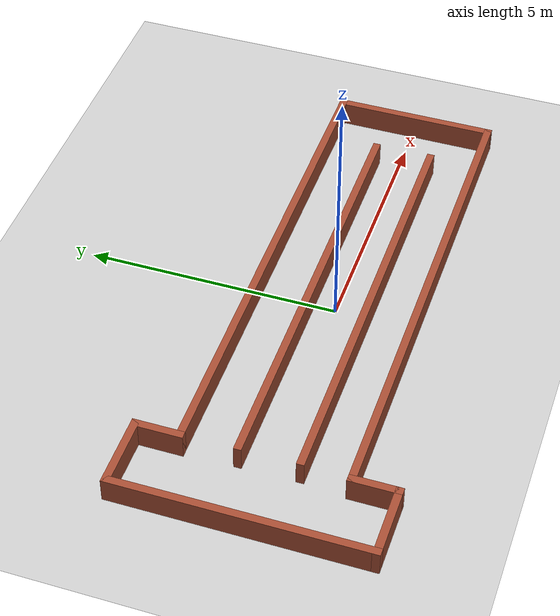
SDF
<sdf version="1.7">
 <world name="default">
  <light name="sun" type="directional">
   <pose>0 0 10 0 -0 0</pose>
   <diffuse>0.8 0.8 0.8 1</diffuse>
   <specular>0.2 0.2 0.2 1</specular>
   <attenuation>
    <range>1000</range>
    <constant>0.9</constant>
    <linear>0.01</linear>
    <quadratic>0.001</quadratic>
   </attenuation>
   <direction>-0.5 0.1 -0.9</direction>
   <spot><inner_angle>0</inner_angle><outer_angle>0</outer_angle><falloff>0</falloff></spot>
  </light>
  <model name="ground_plane">
   <static>1</static>
   <link name="link">
    <collision name="collision">
     <geometry><plane><normal>0 0 1</normal><size>100 100</size></plane></geometry>
     <surface>
      <contact><collide_bitmask>65535</collide_bitmask></contact>
      <friction><ode><mu>100</mu><mu2>50</mu2></ode></friction>
     </surface>
    </collision>
    <visual name="visual">
     <cast_shadows>0</cast_shadows>
     <geometry><plane><normal>0 0 1</normal><size>100 100</size></plane></geometry>
     <material>
      <script><uri>file://media/materials/scripts/gazebo.material</uri><name>Gazebo/Grey</name></script>
     </material>
    </visual>
   </link>
  </model>
  <gravity>0 0 -9.8</gravity>
  <magnetic_field>6e-06 2.3e-05 -4.2e-05</magnetic_field>
  <atmosphere type="adiabatic"/>
  <physics type="ode">
   <max_step_size>0.001</max_step_size>
   <real_time_factor>1</real_time_factor>
   <real_time_update_rate>1000</real_time_update_rate>
  </physics>
  <scene><ambient>0.4 0.4 0.4 1</ambient><background>0.7 0.7 0.7 1</background><shadows>1</shadows></scene>
  <spherical_coordinates>
   <surface_model>EARTH_WGS84</surface_model>
   <latitude_deg>0</latitude_deg>
   <longitude_deg>0</longitude_deg>
   <elevation>0</elevation>
   <heading_deg>0</heading_deg>
  </spherical_coordinates>
  <model name="corridor28">
   <pose>0.021452 -0.012203 0 0 -0 0</pose>
   <link name="Wall_0">
    <collision name="Wall_0_Collision">
     <geometry><box><size>5 0.15 0.5</size></box></geometry>
     <pose>0 0 0.25 0 -0 0</pose>
    </collision>
    <visual name="Wall_0_Visual">
     <pose>0 0 0.25 0 -0 0</pose>
     <geometry><box><size>5 0.15 0.5</size></box></geometry>
     <material>
      <script><uri>file://media/materials/scripts/gazebo.material</uri><name>Gazebo/Bricks</name></script>
      <ambient>1 1 1 1</ambient>
     </material>
     <meta><layer>0</layer></meta>
    </visual>
    <pose>-5.6 0 0 0 -0 1.5708</pose>
   </link>
   <link name="Wall_1">
    <collision name="Wall_1_Collision">
     <geometry><box><size>1.5 0.15 0.5</size></box></geometry>
     <pose>0 0 0.25 0 -0 0</pose>
    </collision>
    <visual name="Wall_1_Visual">
     <pose>0 0 0.25 0 -0 0</pose>
     <geometry><box><size>1.5 0.15 0.5</size></box></geometry>
     <material>
      <script><uri>file://media/materials/scripts/gazebo.material</uri><name>Gazebo/Bricks</name></script>
      <ambient>1 1 1 1</ambient>
     </material>
     <meta><layer>0</layer></meta>
    </visual>
    <pose>-4.925 2.425 0 0 -0 0</pose>
   </link>
   <link name="Wall_10">
    <collision name="Wall_10_Collision">
     <geometry><box><size>8.75 0.15 0.5</size></box></geometry>
     <pose>0 0 0.25 0 -0 0</pose>
    </collision>
    <visual name="Wall_10_Visual">
     <pose>0 0 0.25 0 -0 0</pose>
     <geometry><box><size>8.75 0.15 0.5</size></box></geometry>
     <material>
      <script><uri>file://media/materials/scripts/gazebo.material</uri><name>Gazebo/Bricks</name></script>
      <ambient>1 1 1 1</ambient>
     </material>
     <meta><layer>0</layer></meta>
    </visual>
    <pose>0.112 0.506 0 0 -0 0</pose>
   </link>
   <link name="Wall_12">
    <collision name="Wall_12_Collision">
     <geometry><box><size>8.75 0.15 0.5</size></box></geometry>
     <pose>0 0 0.25 0 -0 0</pose>
    </collision>
    <visual name="Wall_12_Visual">
     <pose>0 0 0.25 0 -0 0</pose>
     <geometry><box><size>8.75 0.15 0.5</size></box></geometry>
     <material>
      <script><uri>file://media/materials/scripts/gazebo.material</uri><name>Gazebo/Bricks</name></script>
      <ambient>1 1 1 1</ambient>
     </material>
     <meta><layer>0</layer></meta>
    </visual>
    <pose>0.132 -0.641 0 0 -0 0</pose>
   </link>
   <link name="Wall_2">
    <collision name="Wall_2_Collision">
     <geometry><box><size>1 0.15 0.5</size></box></geometry>
     <pose>0 0 0.25 0 -0 0</pose>
    </collision>
    <visual name="Wall_2_Visual">
     <pose>0 0 0.25 0 -0 0</pose>
     <geometry><box><size>1 0.15 0.5</size></box></geometry>
     <material>
      <script><uri>file://media/materials/scripts/gazebo.material</uri><name>Gazebo/Bricks</name></script>
      <ambient>1 1 1 1</ambient>
     </material>
     <meta><layer>0</layer></meta>
    </visual>
    <pose>-4.25 2 0 0 -0 -1.5708</pose>
   </link>
   <link name="Wall_3">
    <collision name="Wall_3_Collision">
     <geometry><box><size>10 0.15 0.5</size></box></geometry>
     <pose>0 0 0.25 0 -0 0</pose>
    </collision>
    <visual name="Wall_3_Visual">
     <pose>0 0 0.25 0 -0 0</pose>
     <geometry><box><size>10 0.15 0.5</size></box></geometry>
     <material>
      <script><uri>file://media/materials/scripts/gazebo.material</uri><name>Gazebo/Bricks</name></script>
      <ambient>1 1 1 1</ambient>
     </material>
     <meta><layer>0</layer></meta>
    </visual>
    <pose>0.675 1.575 0 0 -0 0</pose>
   </link>
   <link name="Wall_5">
    <collision name="Wall_5_Collision">
     <geometry><box><size>1.5 0.15 0.5</size></box></geometry>
     <pose>0 0 0.25 0 -0 0</pose>
    </collision>
    <visual name="Wall_5_Visual">
     <pose>0 0 0.25 0 -0 0</pose>
     <geometry><box><size>1.5 0.15 0.5</size></box></geometry>
     <material>
      <script><uri>file://media/materials/scripts/gazebo.material</uri><name>Gazebo/Bricks</name></script>
      <ambient>1 1 1 1</ambient>
     </material>
     <meta><layer>0</layer></meta>
    </visual>
    <pose>-4.925 -2.425 0 0 -0 0</pose>
   </link>
   <link name="Wall_6">
    <collision name="Wall_6_Collision">
     <geometry><box><size>1 0.15 0.5</size></box></geometry>
     <pose>0 0 0.25 0 -0 0</pose>
    </collision>
    <visual name="Wall_6_Visual">
     <pose>0 0 0.25 0 -0 0</pose>
     <geometry><box><size>1 0.15 0.5</size></box></geometry>
     <material>
      <script><uri>file://media/materials/scripts/gazebo.material</uri><name>Gazebo/Bricks</name></script>
      <ambient>0.921569 0.807843 0.615686 1</ambient>
     </material>
     <meta><layer>0</layer></meta>
    </visual>
    <pose>-4.25 -2 0 0 -0 1.5708</pose>
   </link>
   <link name="Wall_7">
    <collision name="Wall_7_Collision">
     <geometry><box><size>10 0.15 0.5</size></box></geometry>
     <pose>0 0 0.25 0 -0 0</pose>
    </collision>
    <visual name="Wall_7_Visual">
     <pose>0 0 0.25 0 -0 0</pose>
     <geometry><box><size>10 0.15 0.5</size></box></geometry>
     <material>
      <script><uri>file://media/materials/scripts/gazebo.material</uri><name>Gazebo/Bricks</name></script>
      <ambient>0.921569 0.807843 0.615686 1</ambient>
     </material>
     <meta><layer>0</layer></meta>
    </visual>
    <pose>0.675 -1.575 0 0 -0 0</pose>
   </link>
   <link name="Wall_8">
    <collision name="Wall_8_Collision">
     <geometry><box><size>3.3 0.15 0.5</size></box></geometry>
     <pose>0 0 0.25 0 -0 0</pose>
    </collision>
    <visual name="Wall_8_Visual">
     <pose>0 0 0.25 0 -0 0</pose>
     <geometry><box><size>3.3 0.15 0.5</size></box></geometry>
     <material>
      <script><uri>file://media/materials/scripts/gazebo.material</uri><name>Gazebo/Bricks</name></script>
      <ambient>1 1 1 1</ambient>
     </material>
     <meta><layer>0</layer></meta>
    </visual>
    <pose>5.6 0 0 0 -0 1.5708</pose>
   </link>
   <static>1</static>
  </model>
 </world>
</sdf>
